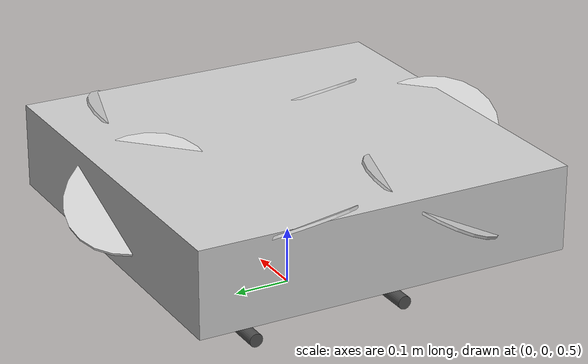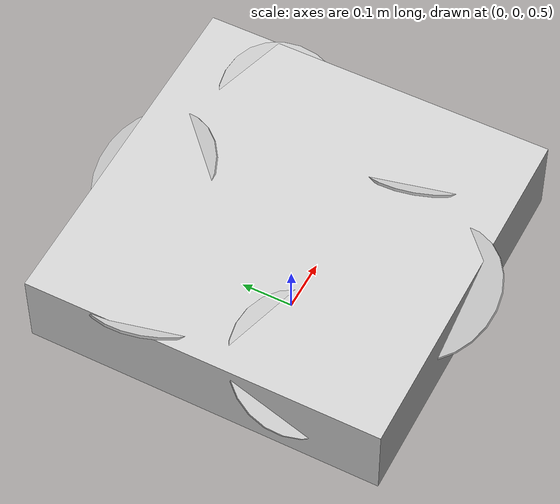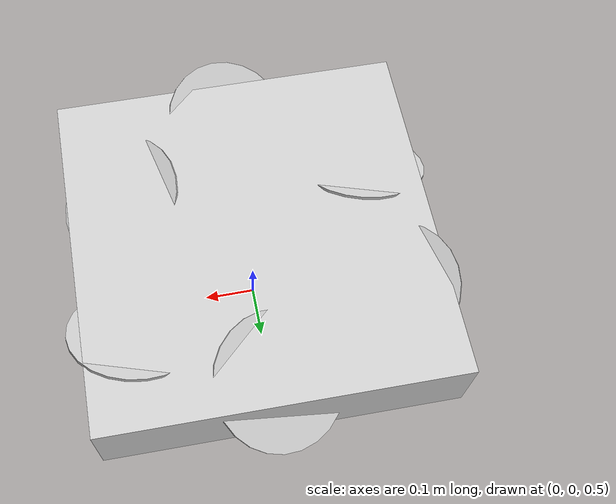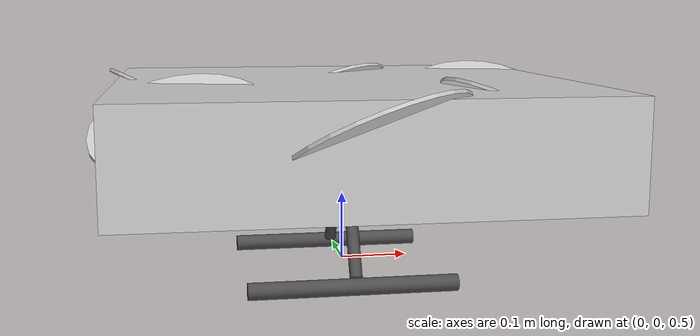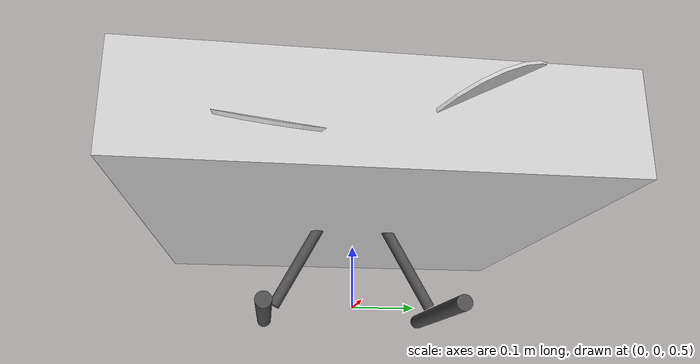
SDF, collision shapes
<?xml version="1.0" ?>
<sdf version="1.6">
    <model name='SIMAR_with_standoffs'>
    <!-- Typhoon H body -->
    <pose>0.0 0.0 0.7 0 0 0</pose>
    <link name='base_link'>
      <pose frame=''>0 0 0 0 0 0</pose>
      <inertial>
        <pose frame=''>0.001005 0 -0.0090035 0 -0 0</pose>
        <!-- masa original Typhoon base_link 2.02 -->
        <mass>2.6</mass>
        <inertia>
          <ixx>0.026</ixx>
          <ixy>0</ixy>
          <ixz>0</ixz>
          <iyy>0.026</iyy>
          <iyz>0</iyz>
          <izz>0.0515</izz>
        </inertia>
      </inertial>
      <collision name='base_link_collision'>
        <pose frame=''>0 0 0.0 0 0 0</pose>
        <geometry>
          <box>
            <size>0.67 0.67 0.15</size>
          </box>
        </geometry>
        <surface>
          <contact>
            <ode>
              <min_depth>0.001</min_depth>
              <max_vel>100.0</max_vel>
            </ode>
          </contact>
          <friction>
            <ode/>
          </friction>
        </surface>
      </collision>
      <visual name="body_visual">
        <pose>0 0 0 0 0 0.524</pose>
        <geometry>
          <mesh><uri>model://SIMAR_with_standoffs/meshes/dji_f550_central_board.dae</uri></mesh>
        </geometry>
	<material>
          <ambient>0.8 0.8 0.8 1</ambient>
          <diffuse>0.8 0.8 0.8 1</diffuse>
          <specular>0.5 0.5 0.5 1</specular>
          <pbr>
            <metal>
              <albedo_map>model://SIMAR_with_standoffs/materials/textures/Carbon.jpg</albedo_map>
            </metal>
          </pbr>
        </material>
      </visual>

      <visual name="arm_0_visual">
        <pose>0 -0.11 0.0 0 0 -1.5708</pose>
        <geometry>
          <mesh><uri>model://SIMAR_with_standoffs/meshes/dji_f550_arm.dae</uri></mesh>
        </geometry>
	<material>
          <ambient>0.8 0.8 0.8 1</ambient>
          <diffuse>0.8 0.8 0.8 1</diffuse>
          <specular>0.2 0.2 0.2 1</specular>
          <pbr>
            <metal>
              <albedo_map>model://SIMAR_with_standoffs/materials/textures/Marfil.jpg</albedo_map>
            </metal>
          </pbr>
        </material>
      </visual>

      <visual name="motor_0_stator_visual">
        <pose>0 -0.275 0.0 -0.349 -0.349 0</pose>
        <geometry>
          <mesh><uri>model://SIMAR_with_standoffs/meshes/dji_f550_rotor.dae</uri></mesh>
        </geometry>
	<material>
          <ambient>0.8 0.8 0.8 1</ambient>
          <diffuse>0.8 0.8 0.8 1</diffuse>
          <specular>0.5 0.5 0.5 1</specular>
          <pbr>
            <metal>
              <albedo_map>model://SIMAR_with_standoffs/materials/textures/Black.jpg</albedo_map>
            </metal>
          </pbr>
        </material>
      </visual>

      <visual name="arm_1_visual">
        <pose>0 0.11 0.0 0 0 1.5708</pose>
        <geometry>
          <mesh><uri>model://SIMAR_with_standoffs/meshes/dji_f550_arm.dae</uri></mesh>
        </geometry>
	<material>
          <ambient>0.8 0.8 0.8 1</ambient>
          <diffuse>0.8 0.8 0.8 1</diffuse>
          <specular>0.2 0.2 0.2 1</specular>
          <pbr>
            <metal>
              <albedo_map>model://SIMAR_with_standoffs/materials/textures/Marfil.jpg</albedo_map>
            </metal>
          </pbr>
        </material>
      </visual>

      <visual name="motor_1_stator_visual">
        <pose>0 0.275 0.0 -0.349 -0.349 0</pose>
        <geometry>
          <mesh><uri>model://SIMAR_with_standoffs/meshes/dji_f550_rotor.dae</uri></mesh>
        </geometry>
	<material>
          <ambient>0.8 0.8 0.8 1</ambient>
          <diffuse>0.8 0.8 0.8 1</diffuse>
          <specular>0.5 0.5 0.5 1</specular>
          <pbr>
            <metal>
              <albedo_map>model://SIMAR_with_standoffs/materials/textures/Black.jpg</albedo_map>
            </metal>
          </pbr>
        </material>
      </visual>

      <visual name="arm_2_visual">
        <pose>0.09526275000000001 -0.055 0.0 0 0 -0.5236</pose>
        <geometry>
          <mesh><uri>model://SIMAR_with_standoffs/meshes/dji_f550_arm.dae</uri></mesh>
        </geometry>
	<material>
          <ambient>0.8 0.8 0.8 1</ambient>
          <diffuse>0.8 0.8 0.8 1</diffuse>
          <specular>0.2 0.2 0.2 1</specular>
          <pbr>
            <metal>
              <albedo_map>model://SIMAR_with_standoffs/materials/textures/Black.jpg</albedo_map>
            </metal>
          </pbr>
        </material>
      </visual>

      <visual name="motor_2_stator_visual">
        <pose>0.23815687500000002 0.1375 0.0 -0.0 -0.0 0</pose>
        <geometry>
          <mesh><uri>model://SIMAR_with_standoffs/meshes/dji_f550_rotor.dae</uri></mesh>
        </geometry>
	<material>
          <ambient>0.8 0.8 0.8 1</ambient>
          <diffuse>0.8 0.8 0.8 1</diffuse>
          <specular>0.5 0.5 0.5 1</specular>
          <pbr>
            <metal>
              <albedo_map>model://SIMAR_with_standoffs/materials/textures/Black.jpg</albedo_map>
            </metal>
          </pbr>
        </material>
      </visual>

      <visual name="arm_3_visual">
        <pose>-0.09526275000000001 0.055 0.0 0 0 2.618</pose>
        <geometry>
          <mesh><uri>model://SIMAR_with_standoffs/meshes/dji_f550_arm.dae</uri></mesh>
        </geometry>
	<material>
          <ambient>0.8 0.8 0.8 1</ambient>
          <diffuse>0.8 0.8 0.8 1</diffuse>
          <specular>0.2 0.2 0.2 1</specular>
          <pbr>
            <metal>
              <albedo_map>model://SIMAR_with_standoffs/materials/textures/DarkRed.jpg</albedo_map>
            </metal>
          </pbr>
        </material>
      </visual>

      <visual name="motor_3_stator_visual">
        <pose>-0.23815687500000002 -0.1375 0.0 -0.0 -0.0 0</pose>
        <geometry>
          <mesh><uri>model://SIMAR_with_standoffs/meshes/dji_f550_rotor.dae</uri></mesh>
        </geometry>
	<material>
          <ambient>0.8 0.8 0.8 1</ambient>
          <diffuse>0.8 0.8 0.8 1</diffuse>
          <specular>0.5 0.5 0.5 1</specular>
          <pbr>
            <metal>
              <albedo_map>model://SIMAR_with_standoffs/materials/textures/Black.jpg</albedo_map>
            </metal>
          </pbr>
        </material>
      </visual>

      <visual name="arm_4_visual">
        <pose>0.09526275000000001 0.055 0.0 0 0 0.5236</pose>
        <geometry>
          <mesh><uri>model://SIMAR_with_standoffs/meshes/dji_f550_arm.dae</uri></mesh>
        </geometry>
	<material>
          <ambient>0.8 0.8 0.8 1</ambient>
          <diffuse>0.8 0.8 0.8 1</diffuse>
          <specular>0.2 0.2 0.2 1</specular>
          <pbr>
            <metal>
              <albedo_map>model://SIMAR_with_standoffs/materials/textures/Black.jpg</albedo_map>
            </metal>
          </pbr>
        </material>
      </visual>

      <visual name="motor_4_stator_visual">
        <pose>0.23815687500000002 -0.1375 0.0 0.1072 -0.4776 0.0</pose>
        <geometry>
          <mesh><uri>model://SIMAR_with_standoffs/meshes/dji_f550_rotor.dae</uri></mesh>
        </geometry>
	<material>
          <ambient>0.8 0.8 0.8 1</ambient>
          <diffuse>0.8 0.8 0.8 1</diffuse>
          <specular>0.5 0.5 0.5 1</specular>
          <pbr>
            <metal>
              <albedo_map>model://SIMAR_with_standoffs/materials/textures/Black.jpg</albedo_map>
            </metal>
          </pbr>
        </material>
      </visual>

      <visual name="arm_5_visual">
        <pose>-0.09526275000000001 -0.055 0.0 0 0 -2.618</pose>
        <geometry>
          <mesh><uri>model://SIMAR_with_standoffs/meshes/dji_f550_arm.dae</uri></mesh>
        </geometry>
	<material>
          <ambient>0.8 0.8 0.8 1</ambient>
          <diffuse>0.8 0.8 0.8 1</diffuse>
          <specular>0.2 0.2 0.2 1</specular>
          <pbr>
            <metal>
              <albedo_map>model://SIMAR_with_standoffs/materials/textures/DarkRed.jpg</albedo_map>
            </metal>
          </pbr>
        </material>
      </visual>

      <visual name="motor_5_stator_visual">
        <pose>-0.23815687500000002 0.1375 0.0 0.1072 -0.4776 0.0</pose>
        <geometry>
          <mesh><uri>model://SIMAR_with_standoffs/meshes/dji_f550_rotor.dae</uri></mesh>
        </geometry>
	<material>
          <ambient>0.8 0.8 0.8 1</ambient>
          <diffuse>0.8 0.8 0.8 1</diffuse>
          <specular>0.5 0.5 0.5 1</specular>
          <pbr>
            <metal>
              <albedo_map>model://SIMAR_with_standoffs/materials/textures/Black.jpg</albedo_map>
            </metal>
          </pbr>
        </material>
      </visual>
    </link>

    <link name="left_leg">
      <inertial>
        <!-- place holder -->
        <pose frame=''>0 -0.14314 -0.207252 0 -0 0</pose>
        <mass>0.001</mass>
        <inertia>
          <ixx>0.0001</ixx>
          <ixy>0</ixy>
          <ixz>0</ixz>
          <iyy>0.0001</iyy>
          <iyz>0</iyz>
          <izz>0.0001</izz>
        </inertia>
      </inertial>
      <collision name='collision'>
        <pose frame=''>-0.005 -0.14314 -0.207252 0 1.56893 0</pose>
        <geometry>
          <cylinder>
            <radius>0.012209</radius>
            <length>0.3</length>
          </cylinder>
        </geometry>
        <surface>
          <friction>
            <ode>
              <mu>10000</mu>
              <mu2>10000</mu2>
            </ode>
          </friction>
          <contact>
            <ode>

              <max_vel>100.01</max_vel>
              <min_depth>0.001</min_depth>
            </ode>
          </contact>
        </surface>
      </collision>
      <collision name='collision_bar'>
        <pose frame=''>0.00052 -0.08503 -0.121187 -0.501318 0 0</pose>
        <geometry>
          <cylinder>
            <radius>0.00914984</radius>
            <length>0.176893</length>
          </cylinder>
        </geometry>
        <surface>
          <friction>
            <ode>
              <mu>10000</mu>
              <mu2>10000</mu2>
            </ode>
          </friction>
          <contact>
            <ode>

              <max_vel>100.01</max_vel>
              <min_depth>0.001</min_depth>
            </ode>
          </contact>
        </surface>
      </collision>
      <visual name='base_link_left_leg'>
        <pose frame=''>0 0 0 0 -0 0</pose>
        <geometry>
          <mesh>
            <scale>0.001 0.001 0.001</scale>
            <uri>model://SIMAR_with_standoffs/meshes/leg2_remeshed_v3.stl</uri>
          </mesh>
        </geometry>
        <material>
          <lighting>1</lighting>
            <script>
              <uri>file://media/materials/scripts/gazebo.material</uri>
              <name>Gazebo/DarkGrey</name>
            </script>
            <ambient>0.3 0.3 0.3 1</ambient>
            <diffuse>0.7 0.7 0.7 1</diffuse>
            <specular>0.01 0.01 0.01 1</specular>
            <emissive>0 0 0 1</emissive>
        </material>
      </visual>
    </link>
    <joint name='left_leg_joint' type='fixed'>
      <child>left_leg</child>
      <parent>base_link</parent>
      <pose frame=''>0.00026 -0.040515 -0.048 0 0 0</pose>
      <axis>
        <xyz>-1 0 0</xyz>
        <limit>
          <lower>0</lower>
          <upper>1</upper>
          <effort>100</effort>
          <velocity>-1</velocity>
          <stiffness>100000000</stiffness>
          <dissipation>1</dissipation>
        </limit>
        <dynamics>
          <damping>0.1</damping>
        </dynamics>
        <use_parent_model_frame>1</use_parent_model_frame>
      </axis>
      <physics>
        <ode>
          <implicit_spring_damper>1</implicit_spring_damper>
        </ode>
      </physics>
    </joint>

    <link name="right_leg">
      <pose frame=''>0 0 0 0 -0 0</pose>
      <inertial>
        <!-- place holder -->
        <pose frame=''>0 0.14314 -0.207252 0 0 0</pose>
        <mass>0.001</mass>
        <inertia>
          <ixx>0.0001</ixx>
          <ixy>0</ixy>
          <ixz>0</ixz>
          <iyy>0.0001</iyy>
          <iyz>0</iyz>
          <izz>0.0001</izz>
        </inertia>
      </inertial>
      <collision name='collision'>
        <pose frame=''>-0.005 0.14314 -0.207252 0 1.56893 0</pose>
        <geometry>
          <cylinder>
            <radius>0.012209</radius>
            <length>0.3</length>
          </cylinder>
        </geometry>
        <surface>
          <friction>
            <ode>
              <mu>10000</mu>
              <mu2>10000</mu2>
            </ode>
          </friction>
          <contact>
            <ode>

              <max_vel>100.01</max_vel>
              <min_depth>0.001</min_depth>
            </ode>
          </contact>
        </surface>
      </collision>
      <collision name='collision_bar'>
        <pose frame=''>0.00052 0.08503 -0.121187 0.501318 0 0</pose>
        <geometry>
          <cylinder>
            <radius>0.00914984</radius>
            <length>0.176893</length>
          </cylinder>
        </geometry>
        <surface>
          <friction>
            <ode>
              <mu>10000</mu>
              <mu2>10000</mu2>
            </ode>
          </friction>
          <contact>
            <ode>
              <max_vel>100.01</max_vel>
              <min_depth>0.001</min_depth>
            </ode>
          </contact>
        </surface>
      </collision>
      <visual name='base_link_right_leg'>
        <pose frame=''>0 0 0 0 -0 0</pose>
        <geometry>
          <mesh>
            <scale>0.001 0.001 0.001</scale>
            <uri>model://SIMAR_with_standoffs/meshes/leg1_remeshed_v3.stl</uri>
          </mesh>
        </geometry>
        <material>
          <lighting>1</lighting>
            <script>
              <uri>file://media/materials/scripts/gazebo.material</uri>
              <name>Gazebo/DarkGrey</name>
            </script>
            <ambient>0.3 0.3 0.3 1</ambient>
            <diffuse>0.7 0.7 0.7 1</diffuse>
            <specular>0.01 0.01 0.01 1</specular>
            <emissive>0 0 0 1</emissive>
        </material>
      </visual>
    </link>
    <joint name='right_leg_joint' type='fixed'>
      <child>right_leg</child>
      <parent>base_link</parent>
      <pose frame=''>0.00026 0.040515 -0.048 0 0 0</pose>
      <axis>
        <xyz>1 0 0</xyz>
        <limit>
          <lower>0</lower>
          <upper>1</upper>
          <effort>100</effort>
          <velocity>-1</velocity>
          <stiffness>100000000</stiffness>
          <dissipation>1</dissipation>
        </limit>
        <dynamics>
          <damping>0.1</damping>
        </dynamics>
        <use_parent_model_frame>1</use_parent_model_frame>
      </axis>
      <physics>
        <ode>
          <implicit_spring_damper>1</implicit_spring_damper>
        </ode>
      </physics>
    </joint>

    <link name='imu_link'>
      <pose frame=''>0 0 0 0 0 3.1415927</pose>
      <inertial>
        <pose frame=''>0 0 0 0 -0 0</pose>
        <mass>0.015</mass>
        <inertia>
          <ixx>1e-05</ixx>
          <ixy>0</ixy>
          <ixz>0</ixz>
          <iyy>1e-05</iyy>
          <iyz>0</iyz>
          <izz>1e-05</izz>
        </inertia>
      </inertial>
      <sensor name="imu_sensor" type="imu">
        <gz_frame_id>imu_link</gz_frame_id>
        <pose degrees="true">0 0 0 180 0 0</pose>
        <always_on>1</always_on>
        <update_rate>1000.0</update_rate>
      </sensor>
    </link>
    <joint name='imu_joint' type='revolute'>
      <child>imu_link</child>
      <parent>base_link</parent>
      <axis>
        <xyz>1 0 0</xyz>
        <limit>
          <lower>0</lower>
          <upper>0</upper>
          <effort>0</effort>
          <velocity>0</velocity>
        </limit>
        <dynamics>
          <spring_reference>0</spring_reference>
          <spring_stiffness>0</spring_stiffness>
        </dynamics>
        <use_parent_model_frame>1</use_parent_model_frame>
      </axis>
    </joint>
    <link name='rotor_3'>
      <pose frame=''>0.2381 0.1375 0.026 0.4657 -0.1528 0</pose>

      <inertial>
        <mass>0.017</mass>
        <inertia>
          <ixx>5e-05</ixx><iyy>5e-05</iyy><izz>9.5e-05</izz>
        </inertia>
      </inertial>
      <collision name='rotor_3_collision'>
        <pose frame=''>0 0 0 0 -0 0</pose>
        <geometry>
          <cylinder>
            <length>0.005</length>
            <radius>0.128</radius>
          </cylinder>
        </geometry>
        <surface>
          <contact>
            <ode/>
          </contact>
          <friction>
            <ode/>
          </friction>
        </surface>
      </collision>
      <visual name="rotor_3_visual">
        <geometry>
          <mesh>
            <uri>model://SIMAR_with_standoffs/meshes/dji_f550_prop.dae</uri>
            <scale>1 1 1</scale>
          </mesh>
        </geometry>
	<material>
          <ambient>0.8 0.8 0.8 1</ambient>
          <diffuse>0.8 0.8 0.8 1</diffuse>
          <specular>0.5 0.5 0.5 1</specular>
          <pbr>
            <metal>
              <albedo_map>model://SIMAR/materials/textures/LightGrey.jpg</albedo_map>
            </metal>
          </pbr>
        </material>
      </visual>
      <gravity>1</gravity>
      <velocity_decay/>
      <self_collide>0</self_collide>
    </link>
    <joint name='rotor_3_joint' type='revolute'>
      <child>rotor_3</child>
      <parent>base_link</parent>
      <axis>
        <xyz expressed_in="__model__">-0.136 -0.449 0.883</xyz>
        <limit>
          <lower>-1e+16</lower>
          <upper>1e+16</upper>
          <effort>10</effort>
          <velocity>-1</velocity>
        </limit>
        <dynamics>
          <damping>0.005</damping>
        </dynamics>
        <use_parent_model_frame>1</use_parent_model_frame>
      </axis>
      <physics>
        <ode>
          <implicit_spring_damper>1</implicit_spring_damper>
        </ode>
      </physics>
    </joint>
    <link name='rotor_0'>
      <pose frame=''>-0.2381 0.1375 0.026 -0.1072 0.4776 0.0</pose>

      <inertial>
        <mass>0.017</mass>
        <inertia>
          <ixx>5e-05</ixx><iyy>5e-05</iyy><izz>9.5e-05</izz>
        </inertia>
      </inertial>
      <collision name='rotor_0_collision'>
        <pose frame=''>0 0 0 0 -0 0</pose>
        <geometry>
          <cylinder>
            <length>0.005</length>
            <radius>0.128</radius>
          </cylinder>
        </geometry>
        <surface>
          <contact>
            <ode/>
          </contact>
          <friction>
            <ode/>
          </friction>
        </surface>
      </collision>
      <visual name="rotor_0_visual">
        <geometry>
          <mesh>
            <uri>model://SIMAR_with_standoffs/meshes/dji_f550_prop.dae</uri>
            <scale>-1 1 1</scale>
          </mesh>
        </geometry>
	<material>
          <ambient>0.8 0.8 0.8 1</ambient>
          <diffuse>0.8 0.8 0.8 1</diffuse>
          <specular>0.5 0.5 0.5 1</specular>
          <pbr>
            <metal>
              <albedo_map>model://SIMAR/materials/textures/LightGrey.jpg</albedo_map>
            </metal>
          </pbr>
        </material>
      </visual>
      <gravity>1</gravity>
      <velocity_decay/>
      <self_collide>0</self_collide>
    </link>
    <joint name='rotor_0_joint' type='revolute'>
      <child>rotor_0</child>
      <parent>base_link</parent>
      <axis>
        <xyz expressed_in="__model__">0.457 0.107 0.883</xyz>
        <limit>
          <lower>-1e+16</lower>
          <upper>1e+16</upper>
          <effort>10</effort>
          <velocity>-1</velocity>
        </limit>
        <dynamics>
          <damping>0.005</damping>
        </dynamics>
        <use_parent_model_frame>1</use_parent_model_frame>
      </axis>
      <physics>
        <ode>
          <implicit_spring_damper>1</implicit_spring_damper>
        </ode>
      </physics>
    </joint>
    <link name='rotor_4'>
      <pose frame=''>0 0.275 0.026 -0.349 -0.349 0</pose>

      <inertial>
        <mass>0.017</mass>
        <inertia>
          <ixx>5e-05</ixx><iyy>5e-05</iyy><izz>9.5e-05</izz>
        </inertia>
      </inertial>
      <collision name='rotor_4_collision'>
        <pose frame=''>0 0 0 0 -0 0</pose>
        <geometry>
          <cylinder>
            <length>0.005</length>
            <radius>0.128</radius>
          </cylinder>
        </geometry>
        <surface>
          <contact>
            <ode/>
          </contact>
          <friction>
            <ode/>
          </friction>
        </surface>
      </collision>
      <visual name="rotor_4_visual">
        <geometry>
          <mesh>
            <uri>model://SIMAR_with_standoffs/meshes/dji_f550_prop.dae</uri>
            <scale>-1 1 1</scale>
          </mesh>
        </geometry>
	<material>
          <ambient>0.8 0.8 0.8 1</ambient>
          <diffuse>0.8 0.8 0.8 1</diffuse>
          <specular>0.5 0.5 0.5 1</specular>
          <pbr>
            <metal>
              <albedo_map>model://SIMAR/materials/textures/LightGrey.jpg</albedo_map>
            </metal>
          </pbr>
        </material>
      </visual>
      <gravity>1</gravity>
      <velocity_decay/>
      <self_collide>0</self_collide>
    </link>
    <joint name='rotor_4_joint' type='revolute'>
      <child>rotor_4</child>
      <parent>base_link</parent>
      <axis>
        <xyz expressed_in="__model__">-0.321 0.342 0.883</xyz>
        <limit>
          <lower>-1e+16</lower>
          <upper>1e+16</upper>
          <effort>10</effort>
          <velocity>-1</velocity>
        </limit>
        <dynamics>
          <damping>0.005</damping>
        </dynamics>
        <use_parent_model_frame>1</use_parent_model_frame>
      </axis>
      <physics>
        <ode>
          <implicit_spring_damper>1</implicit_spring_damper>
        </ode>
      </physics>

      <sensor name="rotor_4_ft" type="force_torque">
	  <always_on>true</always_on>
	  <update_rate>500</update_rate>

	  <force_torque>
	    <frame>child</frame>
	    <measure_direction>child_to_parent</measure_direction>
	  </force_torque>

	</sensor>
    </joint>
    <link name='rotor_1'>
      <pose frame=''>0.2381 -0.1375 0.026 -0.1072 0.4776 0.0</pose>

      <inertial>
        <mass>0.017</mass>
        <inertia>
          <ixx>5e-05</ixx><iyy>5e-05</iyy><izz>9.5e-05</izz>
        </inertia>
      </inertial>
      <collision name='rotor_1_collision'>
        <pose frame=''>0 0 0 0 -0 0</pose>
        <geometry>
          <cylinder>
            <length>0.005</length>
            <radius>0.128</radius>
          </cylinder>
        </geometry>
        <surface>
          <contact>
            <ode/>
          </contact>
          <friction>
            <ode/>
          </friction>
        </surface>
      </collision>
      <visual name="rotor_1_visual">
        <geometry>
          <mesh>
            <uri>model://SIMAR_with_standoffs/meshes/dji_f550_prop.dae</uri>
            <scale>-1 1 1</scale>
          </mesh>
        </geometry>
	<material>
          <ambient>0.8 0.8 0.8 1</ambient>
          <diffuse>0.8 0.8 0.8 1</diffuse>
          <specular>0.5 0.5 0.5 1</specular>
          <pbr>
            <metal>
              <albedo_map>model://SIMAR/materials/textures/LightGrey.jpg</albedo_map>
            </metal>
          </pbr>
        </material>
      </visual>
      <gravity>1</gravity>
      <velocity_decay/>
      <self_collide>0</self_collide>
    </link>
    <joint name='rotor_1_joint' type='revolute'>
      <child>rotor_1</child>
      <parent>base_link</parent>
      <axis>
        <xyz expressed_in="__model__">0.457 0.107 0.883</xyz>
        <limit>
          <lower>-1e+16</lower>
          <upper>1e+16</upper>
          <effort>10</effort>
          <velocity>-1</velocity>
        </limit>
        <dynamics>
          <damping>0.005</damping>
        </dynamics>
        <use_parent_model_frame>1</use_parent_model_frame>
      </axis>
      <physics>
        <ode>
          <implicit_spring_damper>1</implicit_spring_damper>
        </ode>
      </physics>
    </joint>

    <link name='rotor_5'>
      <pose frame=''>0 -0.275 0.026 -0.349 -0.349 0</pose>

      <inertial>
        <mass>0.017</mass>
        <inertia>
          <ixx>5e-05</ixx><iyy>5e-05</iyy><izz>9.5e-05</izz>
        </inertia>
      </inertial>
      <collision name='rotor_5_collision'>
        <pose frame=''>0 0 0 0 -0 0</pose>
        <geometry>
          <cylinder>
            <length>0.005</length>
            <radius>0.128</radius>
          </cylinder>
        </geometry>
        <surface>
          <contact>
            <ode/>
          </contact>
          <friction>
            <ode/>
          </friction>
        </surface>
      </collision>
      <visual name="rotor_5_visual">
        <geometry>
          <mesh>
            <uri>model://SIMAR_with_standoffs/meshes/dji_f550_prop.dae</uri>
            <scale>1 1 1</scale>
          </mesh>
        </geometry>
	<material>
          <ambient>0.8 0.8 0.8 1</ambient>
          <diffuse>0.8 0.8 0.8 1</diffuse>
          <specular>0.5 0.5 0.5 1</specular>
          <pbr>
            <metal>
              <albedo_map>model://SIMAR/materials/textures/LightGrey.jpg</albedo_map>
            </metal>
          </pbr>
        </material>
      </visual>
      <gravity>1</gravity>
      <velocity_decay/>
      <self_collide>0</self_collide>
    </link>
    <joint name='rotor_5_joint' type='revolute'>
      <child>rotor_5</child>
      <parent>base_link</parent>
      <axis>
        <xyz expressed_in="__model__">-0.321 0.342 0.883</xyz>
        <limit>
          <lower>-1e+16</lower>
          <upper>1e+16</upper>
          <effort>10</effort>
          <velocity>-1</velocity>
        </limit>
        <dynamics>
          <damping>0.005</damping>
        </dynamics>
        <use_parent_model_frame>1</use_parent_model_frame>
      </axis>
      <physics>
        <ode>
          <implicit_spring_damper>1</implicit_spring_damper>
        </ode>
      </physics>
    </joint>
    <link name='rotor_2'>
      <pose frame=''>-0.2381 -0.1375 0.026 0.4657 -0.1528 0.0</pose>

      <inertial>
        <mass>0.017</mass>
        <inertia>
          <ixx>5e-05</ixx><iyy>5e-05</iyy><izz>9.5e-05</izz>
        </inertia>
      </inertial>
      <collision name='rotor_2_collision'>
        <pose frame=''>0 0 0 0 -0 0</pose>
        <geometry>
          <cylinder>
            <length>0.005</length>
            <radius>0.128</radius>
          </cylinder>
        </geometry>
        <surface>
          <contact>
            <ode/>
          </contact>
          <friction>
            <ode/>
          </friction>
        </surface>
      </collision>
      <visual name="rotor_2_visual">
        <geometry>
          <mesh>
            <uri>model://SIMAR_with_standoffs/meshes/dji_f550_prop.dae</uri>
            <scale>-1 1 1</scale>
          </mesh>
        </geometry>
	<material>
          <ambient>0.8 0.8 0.8 1</ambient>
          <diffuse>0.8 0.8 0.8 1</diffuse>
          <specular>0.5 0.5 0.5 1</specular>
          <pbr>
            <metal>
              <albedo_map>model://SIMAR/materials/textures/LightGrey.jpg</albedo_map>
            </metal>
          </pbr>
        </material>
      </visual>
      <gravity>1</gravity>
      <velocity_decay/>
      <self_collide>0</self_collide>
    </link>
    <joint name='rotor_2_joint' type='revolute'>
      <child>rotor_2</child>
      <parent>base_link</parent>
      <axis>
        <xyz expressed_in="__model__">-0.136 -0.449 0.883</xyz>
        <limit>
          <lower>-1e+16</lower>
          <upper>1e+16</upper>
          <effort>10</effort>
          <velocity>-1</velocity>
        </limit>
        <dynamics>
          <damping>0.005</damping>
        </dynamics>
        <use_parent_model_frame>1</use_parent_model_frame>
      </axis>
      <physics>
        <ode>
          <implicit_spring_damper>1</implicit_spring_damper>
        </ode>
      </physics>
    </joint>
  </model>
</sdf>
